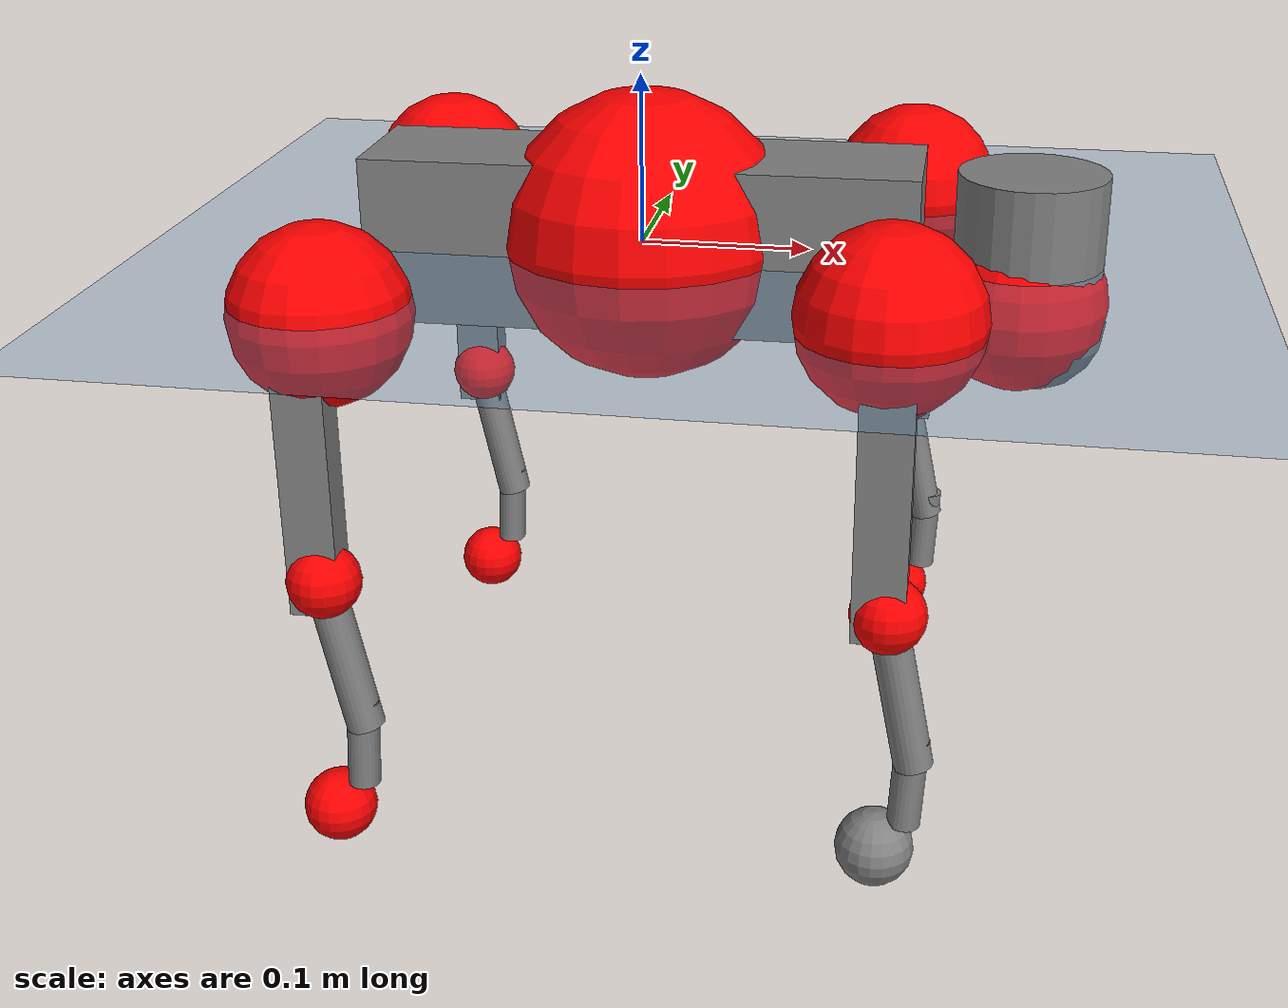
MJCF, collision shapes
<mujoco model="go2">
  <compiler angle="radian" assetdir="assets" balanceinertia="true" inertiafromgeom="false"/>

  <option timestep="0.005" density="1.2" viscosity="2e-05"/>

  <size nkey="1"/>

  <visual>
    <quality shadowsize="8192"/>
    <map shadowclip="0.5"/>
  </visual>

  <default>
    <default class="/">
      <geom contype="0" conaffinity="0" group="1" solref="-1000 -80"/>
      <site size="0.01 0.005 0.005" group="5"/>
      <general forcelimited="true" biastype="affine" gainprm="20" biasprm="0 -20 -0.5"/>
      <default class="go2">
        <joint armature="0.01" damping="0.01" frictionloss="0.2"/>
        <geom condim="1" margin="0.001"/>
        <default class="visual">
          <geom type="mesh" group="2"/>
        </default>
        <default class="collision">
          <geom group="3"/>
          <default class="foot">
            <geom size="0.022 0 0" condim="6" priority="1" friction="0.8 0.02 0.01" solimp="0.015 1 0.022"/>
          </default>
        </default>
        <default class="reward_collision_sphere">
          <geom group="5" rgba="1 0 0 1"/>
        </default>
      </default>
    </default>
  </default>

  <asset>
    <texture type="skybox" colorspace="auto" name="//unnamed_texture_0" builtin="gradient" rgb1="0.95 0.95 0.95" rgb2="0.95 0.95 0.95" width="100" height="600"/>
    <texture type="2d" colorspace="auto" name="texplane" builtin="checker" rgb1="0.345 0.575 0.748" rgb2="0.345 0.575 0.748" markrgb="1 1 1" width="512" height="512"/>
    <material name="MatPlane" class="/" texture="texplane" texuniform="true" texrepeat="2 2" specular="0.9"/>
    <material name="metal" class="/" rgba="0.9 0.95 0.95 1"/>
    <material name="black" class="/" rgba="0 0 0 1"/>
    <material name="white" class="/"/>
    <material name="gray" class="/" rgba="0.671705 0.692426 0.77427 1"/>
    <mesh name="base_0" class="/" file="base_0.obj"/>
    <mesh name="base_1" class="/" file="base_1.obj"/>
    <mesh name="base_2" class="/" file="base_2.obj"/>
    <mesh name="base_3" class="/" file="base_3.obj"/>
    <mesh name="base_4" class="/" file="base_4.obj"/>
    <mesh name="hip_0" class="/" file="hip_0.obj"/>
    <mesh name="hip_1" class="/" file="hip_1.obj"/>
    <mesh name="thigh_0" class="/" file="thigh_0.obj"/>
    <mesh name="thigh_1" class="/" file="thigh_1.obj"/>
    <mesh name="thigh_mirror_0" class="/" file="thigh_mirror_0.obj"/>
    <mesh name="thigh_mirror_1" class="/" file="thigh_mirror_1.obj"/>
    <mesh name="calf_0" class="/" file="calf_0.obj"/>
    <mesh name="calf_1" class="/" file="calf_1.obj"/>
    <mesh name="calf_mirror_0" class="/" file="calf_mirror_0.obj"/>
    <mesh name="calf_mirror_1" class="/" file="calf_mirror_1.obj"/>
    <mesh name="foot" class="/" file="foot.obj"/>
  </asset>

  <worldbody>
    <geom name="floor" class="/" size="100 100 0.125" type="plane" group="0" material="MatPlane"/>
    <light name="toplight_shadow" class="/" pos="0 0 5" dir="0.0990148 0.0990148 -0.990148" type="directional" ambient="0.04 0.04 0.04" diffuse="0.55 0.55 0.55" specular="0.12 0.12 0.12"/>
    <light name="toplight_fill" class="/" pos="0 0 5" dir="0.0990148 0.0990148 -0.990148" type="directional" castshadow="false" ambient="0.04 0.04 0.04" diffuse="0.3 0.3 0.3" specular="0.08 0.08 0.08"/>
    <body name="trunk" childclass="go2" pos="0.00222486 -0.000695355 0.00543352" quat="0.999997 0.000151799 -0.00182429 0.00129677">
      <inertial pos="0.0193029 -0.00286411 -0.0041181" quat="0.00794026 0.702447 0.00903962 0.711635" mass="4.22044" diaginertia="0.0292993 0.140013 0.00404934"/>
      <joint name="//unnamed_joint_0" type="free" armature="0" damping="0" frictionloss="0"/>
      <geom name="//unnamed_geom_1" class="visual" material="black" mesh="base_0"/>
      <geom name="//unnamed_geom_2" class="visual" material="black" mesh="base_1"/>
      <geom name="//unnamed_geom_3" class="visual" material="black" mesh="base_2"/>
      <geom name="//unnamed_geom_4" class="visual" material="white" mesh="base_3"/>
      <geom name="//unnamed_geom_5" class="visual" material="gray" mesh="base_4"/>
      <geom name="trunk_1" class="collision" size="0.162606 0.0404138 0.0492746" type="box"/>
      <geom name="trunk_2" class="collision" size="0.0432233 0.038901" pos="0.224682 0 0.00707369" type="cylinder"/>
      <geom name="trunk_3" class="collision" size="0.0406299" pos="0.230989 0 -0.0424421"/>
      <geom name="//unnamed_geom_9" class="reward_collision_sphere" size="0.0864466"/>
      <geom name="//unnamed_geom_10" class="reward_collision_sphere" size="0.051868" pos="0.22074 0 -0.0318316"/>
      <site name="imu" pos="-0.00793781 -0.00104613 0.0414792" size="0.00864466"/>
      <camera name="track" pos="0 -2.19534 0" quat="0.707107 0.707107 0 0" mode="trackcom"/>
      <camera name="ego_camera" pos="0.245967 0 0.0318316" quat="-0.5 -0.5 0.5 0.5"/>
      <body name="FL_hip" pos="0.152676 0.0534485 -0.000563483" quat="1 0.000728417 0.00023557 0.000209799">
        <inertial pos="-0.000288409 0.00263501 0.00542975" quat="0.504877 0.515541 0.488524 0.490573" mass="0.439718" diaginertia="0.000263488 0.000925099 8.46891e-05"/>
        <joint name="FL_hip_joint" pos="0 0 0" axis="0.999768 -0.00939745 0.0193918" stiffness="0.0107055" range="-1.03905 1.05287" armature="0.00879054" damping="0.0167667" frictionloss="0.175529"/>
        <geom name="//unnamed_geom_11" class="visual" material="metal" mesh="hip_0"/>
        <geom name="//unnamed_geom_12" class="visual" material="gray" mesh="hip_1"/>
        <geom name="//unnamed_geom_13" class="collision" size="0.0397654 0.0172893" pos="0 0.0878138 0" quat="0.707107 0.707107 0 0" type="cylinder"/>
        <geom name="//unnamed_geom_14" class="reward_collision_sphere" size="0.051868" pos="0 0.0768371 0"/>
        <body name="FL_thigh" pos="0.00264855 0.106112 -0.00400838" quat="1 0.000337372 0.000127758 -0.00035734">
          <inertial pos="-0.00342406 -0.024324 -0.0242751" quat="0.831036 0.0929439 -0.0240255 0.547872" mass="0.799682" diaginertia="0.00194808 0.00968457 0.00016775"/>
          <joint name="FL_thigh_joint" pos="0 0 0" axis="-0.00141699 0.999992 -0.00372283" stiffness="0.00820991" range="-1.57101 3.47418" armature="0.00928781" damping="0.000249572" frictionloss="0.174489"/>
          <geom name="//unnamed_geom_15" class="visual" material="metal" mesh="thigh_0"/>
          <geom name="//unnamed_geom_16" class="visual" material="gray" mesh="thigh_1"/>
          <geom name="//unnamed_geom_17" class="collision" size="0.0920656 0.0105897 0.0146959" pos="0 0 -0.0753347" quat="0.707107 0 0.707107 0" type="box"/>
          <body name="FL_calf" pos="-0.000722264 0.000377377 -0.151164" quat="1 1.01129e-05 -2.02215e-06 0.000163331">
            <inertial pos="0.0114567 0.00412595 -0.10029" quat="0.708576 0.00560836 -0.00255599 0.705607" mass="0.153512" diaginertia="0.00047328 0.0023665 9.39685e-06"/>
            <joint name="FL_calf_joint" pos="0 0 0" axis="-0.00307208 0.999991 0.00282803" stiffness="0.00457447" range="-2.59682 -0.841629" armature="0.00782489" damping="0" frictionloss="0.122729"/>
            <geom name="//unnamed_geom_18" class="visual" material="gray" mesh="calf_0"/>
            <geom name="//unnamed_geom_19" class="visual" material="black" mesh="calf_1"/>
            <geom name="FL_calf0" class="collision" size="0.0103736 0.051868" pos="0.00630686 0 -0.0424421" quat="0.994493 0 -0.104807 0" type="cylinder"/>
            <geom name="//unnamed_geom_21" class="collision" size="0.00950912 0.0280951" pos="0.0157671 0 -0.104691" quat="0.999688 0 0.0249974 0" type="cylinder"/>
            <geom name="//unnamed_geom_22" class="visual" pos="0 0 -0.150669" quat="1 0 0 0" material="black" mesh="foot"/>
            <geom name="FL_foot" class="foot" size="0.0190008" pos="-0.00157671 0 -0.150669"/>
            <geom name="//unnamed_geom_24" class="reward_collision_sphere" size="0.0216116"/>
            <geom name="//unnamed_geom_25" class="reward_collision_sphere" size="0.0216116" pos="-0.00157671 0 -0.150669"/>
            <site name="FL_foot" class="foot" pos="-0.00157671 0 -0.150669" size="0.00864466"/>
          </body>
        </body>
      </body>
      <body name="FR_hip" pos="0.152961 -0.0538734 0.000375595" quat="0.999996 0.000859529 0.00044084 -0.00273957">
        <inertial pos="-0.00540695 -0.00130403 -0.000992013" quat="0.494559 0.496729 0.487323 0.520757" mass="0.396758" diaginertia="0.000270344 0.00092298 8.52392e-05"/>
        <joint name="FR_hip_joint" pos="0 0 0" axis="1 -0.000123293 -0.000116449" stiffness="0.0195362" range="-0.941794 1.04214" armature="0.00954278" damping="0.0123987" frictionloss="0.165764"/>
        <geom name="//unnamed_geom_26" class="visual" pos="0 3.40016e-09 1.4584e-07" quat="4.63268e-05 1 0 0" material="metal" mesh="hip_0"/>
        <geom name="//unnamed_geom_27" class="visual" pos="0 5.51207e-09 -3.60718e-07" quat="4.63268e-05 1 0 0" material="gray" mesh="hip_1"/>
        <geom name="//unnamed_geom_28" class="collision" size="0.0397654 0.0172893" pos="0 -0.0878138 0" quat="0.707107 0.707107 0 0" type="cylinder"/>
        <geom name="//unnamed_geom_29" class="reward_collision_sphere" size="0.051868" pos="0 -0.0768371 0"/>
        <body name="FR_thigh" pos="0.00226723 -0.10428 -0.0049305" quat="1 -0.00037934 0.000114949 0.000323598">
          <inertial pos="-0.00294251 0.0251255 -0.0254546" quat="0.556565 -0.0118639 0.0887172 0.825968" mass="0.727359" diaginertia="0.00183885 0.00966154 0.000158434"/>
          <joint name="FR_thigh_joint" pos="0 0 0" axis="-0.00510383 -0.999985 0.00204783" range="-3.49205 1.57126" armature="0.00814124" damping="0.0393635" frictionloss="0.193891"/>
          <geom name="//unnamed_geom_30" class="visual" material="metal" mesh="thigh_mirror_0"/>
          <geom name="//unnamed_geom_31" class="visual" material="gray" mesh="thigh_mirror_1"/>
          <geom name="//unnamed_geom_32" class="collision" size="0.0920656 0.0105897 0.0146959" pos="0 0 -0.0753347" quat="0.707107 0 0.707107 0" type="box"/>
          <body name="FR_calf" pos="0.0048908 0.0015709 -0.155132" quat="0.999999 -0.000767582 0.000792919 -0.000398741">
            <inertial pos="0.00258941 0.00487199 -0.102748" quat="0.70494 -0.0343008 0.007601 0.708396" mass="0.159352" diaginertia="0.000469679 0.00234694 1.00022e-05"/>
            <joint name="FR_calf_joint" pos="0 0 0" axis="-0.00243247 -0.999997 0.00034532" range="0.829943 2.68879" armature="0.00908144" damping="0.0160609" frictionloss="0.16743"/>
            <geom name="//unnamed_geom_33" class="visual" material="gray" mesh="calf_mirror_0"/>
            <geom name="//unnamed_geom_34" class="visual" material="black" mesh="calf_mirror_1"/>
            <geom name="FR_calf0" class="collision" size="0.0112381 0.051868" pos="0.00788357 0 -0.0424421" quat="0.995004 0 -0.0998334 0" type="cylinder"/>
            <geom name="//unnamed_geom_36" class="collision" size="0.00950912 0.0280951" pos="0.0157671 0 -0.104691" quat="0.999688 0 0.0249974 0" type="cylinder"/>
            <geom name="//unnamed_geom_37" class="visual" pos="0 0 -0.150669" quat="1 0 0 0" material="black" mesh="foot"/>
            <geom name="FR_foot" class="foot" size="0.0226278" pos="-0.00157671 0 -0.150669"/>
            <geom name="//unnamed_geom_39" class="reward_collision_sphere" size="0.0216116"/>
            <geom name="//unnamed_geom_40" class="reward_collision_sphere" size="0.0216116" pos="-0.00157671 0 -0.150669"/>
            <site name="FR_foot" class="foot" pos="-0.00157671 0 -0.150669" size="0.00864466"/>
          </body>
        </body>
      </body>
      <body name="RL_hip" pos="-0.153046 0.0520143 -0.00348985" quat="1 0.000413117 -0.000682393 -0.000124274">
        <inertial pos="0.00232608 0.00611723 0.00537649" quat="0.508496 0.492934 0.495551 0.502869" mass="0.427525" diaginertia="0.000267423 0.000968202 8.75022e-05"/>
        <joint name="RL_hip_joint" pos="0 0 0" axis="-0.99984 0.00861382 -0.0156866" stiffness="0.0109711" range="-0.97688 0.961326" armature="0.00725836" damping="0.00203916" frictionloss="0.179767"/>
        <geom name="//unnamed_geom_41" class="visual" pos="-7.05537e-10 0 -1.38302e-07" quat="4.63268e-05 0 1 0" material="metal" mesh="hip_0"/>
        <geom name="//unnamed_geom_42" class="visual" pos="-1.14376e-09 0 -1.22654e-07" quat="4.63268e-05 0 1 0" material="gray" mesh="hip_1"/>
        <geom name="//unnamed_geom_43" class="collision" size="0.0397654 0.0172893" pos="0 0.0878138 0" quat="0.707107 0.707107 0 0" type="cylinder"/>
        <geom name="//unnamed_geom_44" class="reward_collision_sphere" size="0.051868" pos="0 0.0768371 0"/>
        <body name="RL_thigh" pos="0.00280323 0.108044 -0.00670466" quat="1 0.000810088 0.000177887 -0.000207126">
          <inertial pos="-0.00905904 -0.022694 -0.0171794" quat="0.829825 0.085022 -0.0190564 0.55118" mass="0.67317" diaginertia="0.0015683 0.00878917 0.000140529"/>
          <joint name="RL_thigh_joint" pos="0 0 0" axis="0.0339796 0.999405 0.00596017" range="-0.507184 4.55549" armature="0.00873986" damping="0.0402914" frictionloss="0.181202"/>
          <geom name="//unnamed_geom_45" class="visual" material="metal" mesh="thigh_0"/>
          <geom name="//unnamed_geom_46" class="visual" material="gray" mesh="thigh_1"/>
          <geom name="//unnamed_geom_47" class="collision" size="0.0920656 0.0105897 0.0146959" pos="0 0 -0.0753347" quat="0.707107 0 0.707107 0" type="box"/>
          <body name="RL_calf" pos="0.00207938 -0.00305163 -0.146623" quat="0.999999 0.000929582 -0.00069196 -0.000254902">
            <inertial pos="0.0100668 -0.00197101 -0.094254" quat="0.720521 -0.00441686 -0.0177147 0.693193" mass="0.161179" diaginertia="0.000458865 0.002364 9.73084e-06"/>
            <joint name="RL_calf_joint" pos="0 0 0" axis="0.0121248 0.999903 -0.00687367" range="-2.67882 -0.707475" armature="0.00681704" damping="0.0348997" frictionloss="0.179259"/>
            <geom name="//unnamed_geom_48" class="visual" material="gray" mesh="calf_0"/>
            <geom name="//unnamed_geom_49" class="visual" material="black" mesh="calf_1"/>
            <geom name="RL_calf0" class="collision" size="0.0112381 0.051868" pos="0.00788357 0 -0.0424421" quat="0.995004 0 -0.0998334 0" type="cylinder"/>
            <geom name="//unnamed_geom_51" class="collision" size="0.00950912 0.0280951" pos="0.0157671 0 -0.104691" quat="0.999688 0 0.0249974 0" type="cylinder"/>
            <geom name="//unnamed_geom_52" class="visual" pos="0 0 -0.150669" quat="1 0 0 0" material="black" mesh="foot"/>
            <geom name="RL_foot" class="foot" size="0.0205069" pos="-0.00157671 0 -0.150669"/>
            <geom name="//unnamed_geom_54" class="reward_collision_sphere" size="0.0216116"/>
            <geom name="//unnamed_geom_55" class="reward_collision_sphere" size="0.0216116" pos="-0.00157671 0 -0.150669"/>
            <site name="RL_foot" class="foot" pos="-0.00157671 0 -0.150669" size="0.00864466"/>
          </body>
        </body>
      </body>
      <body name="RR_hip" pos="-0.15874 -0.0511982 -0.0144112" quat="1 0.000572151 0.000621654 -0.000114116">
        <inertial pos="0.00686463 -0.0015182 -1.5155e-05" quat="0.491484 0.489081 0.516129 0.502845" mass="0.441871" diaginertia="0.000235944 0.000888179 7.94884e-05"/>
        <joint name="RR_hip_joint" pos="0 0 0" axis="-0.999485 -0.02842 0.0148949" stiffness="0.000317055" range="-1.06355 1.04413" armature="0.00880917" damping="0.00429969" frictionloss="0.118876"/>
        <geom name="//unnamed_geom_56" class="visual" pos="7.16246e-10 3.40016e-09 -2.84142e-07" quat="2.14617e-09 4.63268e-05 4.63268e-05 -1" material="metal" mesh="hip_0"/>
        <geom name="//unnamed_geom_57" class="visual" pos="1.11727e-09 5.51207e-09 2.38064e-07" quat="2.14617e-09 4.63268e-05 4.63268e-05 -1" material="gray" mesh="hip_1"/>
        <geom name="//unnamed_geom_58" class="collision" size="0.0397654 0.0172893" pos="0 -0.0878138 0" quat="0.707107 0.707107 0 0" type="cylinder"/>
        <geom name="//unnamed_geom_59" class="reward_collision_sphere" size="0.051868" pos="0 -0.0768371 0"/>
        <body name="RR_thigh" pos="-0.00355277 -0.104414 -0.000824345" quat="0.999998 -0.000267754 0.00106641 0.00137591">
          <inertial pos="-0.00360225 0.0239479 -0.0177381" quat="0.553785 -0.0208279 0.0805342 0.828494" mass="0.779595" diaginertia="0.00169196 0.00911319 0.000156202"/>
          <joint name="RR_thigh_joint" pos="0 0 0" axis="0.00351545 -0.999969 0.00698084" stiffness="0.0071569" range="-4.54983 0.567579" armature="0.00838767" damping="0" frictionloss="0.153258"/>
          <geom name="//unnamed_geom_60" class="visual" material="metal" mesh="thigh_mirror_0"/>
          <geom name="//unnamed_geom_61" class="visual" material="gray" mesh="thigh_mirror_1"/>
          <geom name="//unnamed_geom_62" class="collision" size="0.0920656 0.0105897 0.0146959" pos="0 0 -0.0753347" quat="0.707107 0 0.707107 0" type="box"/>
          <body name="RR_calf" pos="0.00411034 -0.00279563 -0.148212" quat="0.999995 -0.000872698 -0.000461354 -0.00310851">
            <inertial pos="0.00665943 0.00139288 -0.100511" quat="0.717301 -0.00115837 -0.00552643 0.696741" mass="0.150335" diaginertia="0.00043775 0.00232846 9.89216e-06"/>
            <joint name="RR_calf_joint" pos="0 0 0" axis="0.0285747 -0.999587 -0.00296948" stiffness="0.0218961" range="0.768249 2.67462" armature="0.00840387" damping="0.0288541" frictionloss="0.153473"/>
            <geom name="//unnamed_geom_63" class="visual" material="gray" mesh="calf_mirror_0"/>
            <geom name="//unnamed_geom_64" class="visual" material="black" mesh="calf_mirror_1"/>
            <geom name="RR_calf0" class="collision" size="0.0112381 0.051868" pos="0.00788357 0 -0.0424421" quat="0.995004 0 -0.0998334 0" type="cylinder"/>
            <geom name="//unnamed_geom_66" class="collision" size="0.00950912 0.0280951" pos="0.0157671 0 -0.104691" quat="0.999688 0 0.0249974 0" type="cylinder"/>
            <geom name="//unnamed_geom_67" class="visual" pos="0 0 -0.150669" quat="1 0 0 0" material="black" mesh="foot"/>
            <geom name="RR_foot" class="foot" size="0.0183154" pos="-0.00157671 0 -0.150669"/>
            <geom name="//unnamed_geom_69" class="reward_collision_sphere" size="0.0216116"/>
            <geom name="//unnamed_geom_70" class="reward_collision_sphere" size="0.0216116" pos="-0.00157671 0 -0.150669"/>
            <site name="RR_foot" class="foot" pos="-0.00157671 0 -0.150669" size="0.00864466"/>
          </body>
        </body>
      </body>
    </body>
  </worldbody>

  <contact>
    <pair class="/" geom1="floor" geom2="FL_foot" name="//unnamed_contact_0"/>
    <pair class="/" geom1="floor" geom2="FR_foot" name="//unnamed_contact_1"/>
    <pair class="/" geom1="floor" geom2="RL_foot" name="//unnamed_contact_2"/>
    <pair class="/" geom1="floor" geom2="RR_foot" name="//unnamed_contact_3"/>
  </contact>

  <actuator>
    <general name="FL_hip" class="/" joint="FL_hip_joint" forcerange="-20.1293 20.1293" gainprm="18.4532" biasprm="0 -18.4532 -0.406147"/>
    <general name="FL_thigh" class="/" joint="FL_thigh_joint" forcerange="-22.3449 22.3449" gainprm="18.4532" biasprm="0 -18.4532 -0.406147"/>
    <general name="FL_calf" class="/" joint="FL_calf_joint" forcerange="-39.2574 39.2574" gainprm="18.4532" biasprm="0 -18.4532 -0.406147"/>
    <general name="FR_hip" class="/" joint="FR_hip_joint" forcerange="-18.5498 18.5498" gainprm="18.4532" biasprm="0 -18.4532 -0.406147"/>
    <general name="FR_thigh" class="/" joint="FR_thigh_joint" forcerange="-20.5959 20.5959" gainprm="18.4532" biasprm="0 -18.4532 -0.406147"/>
    <general name="FR_calf" class="/" joint="FR_calf_joint" forcerange="-40.3789 40.3789" gainprm="18.4532" biasprm="0 -18.4532 -0.406147"/>
    <general name="RL_hip" class="/" joint="RL_hip_joint" forcerange="-20.4694 20.4694" gainprm="18.4532" biasprm="0 -18.4532 -0.406147"/>
    <general name="RL_thigh" class="/" joint="RL_thigh_joint" forcerange="-24.5724 24.5724" gainprm="18.4532" biasprm="0 -18.4532 -0.406147"/>
    <general name="RL_calf" class="/" joint="RL_calf_joint" forcerange="-33.4898 33.4898" gainprm="18.4532" biasprm="0 -18.4532 -0.406147"/>
    <general name="RR_hip" class="/" joint="RR_hip_joint" forcerange="-20.592 20.592" gainprm="18.4532" biasprm="0 -18.4532 -0.406147"/>
    <general name="RR_thigh" class="/" joint="RR_thigh_joint" forcerange="-19.1134 19.1134" gainprm="18.4532" biasprm="0 -18.4532 -0.406147"/>
    <general name="RR_calf" class="/" joint="RR_calf_joint" forcerange="-38.7673 38.7673" gainprm="18.4532" biasprm="0 -18.4532 -0.406147"/>
  </actuator>

  <sensor>
    <gyro site="imu" name="imu_angular_velocity"/>
    <velocimeter site="imu" name="imu_linear_velocity"/>
    <framelinvel objtype="site" objname="FL_foot" name="FL_foot_global_linear_velocity"/>
    <framelinvel objtype="site" objname="FR_foot" name="FR_foot_global_linear_velocity"/>
    <framelinvel objtype="site" objname="RL_foot" name="RL_foot_global_linear_velocity"/>
    <framelinvel objtype="site" objname="RR_foot" name="RR_foot_global_linear_velocity"/>
  </sensor>

  <keyframe>
    <key name="home" qpos="0 0 0.325 1 0 0 0 0.1 0.8 -1.5 -0.1 -0.8 1.5 -0.1 0.8 -1.5 0.1 -0.8 1.5"/>
  </keyframe>
</mujoco>
